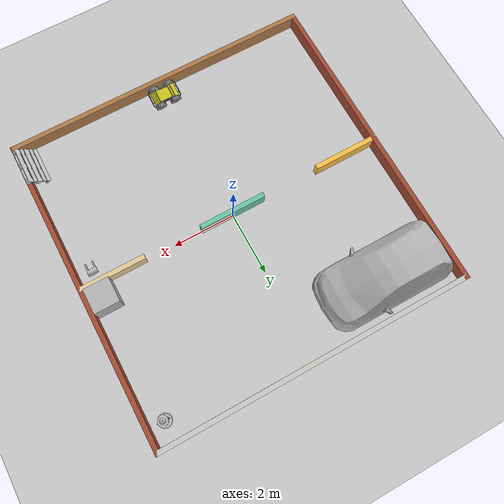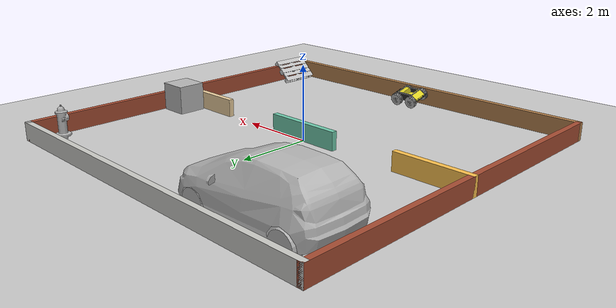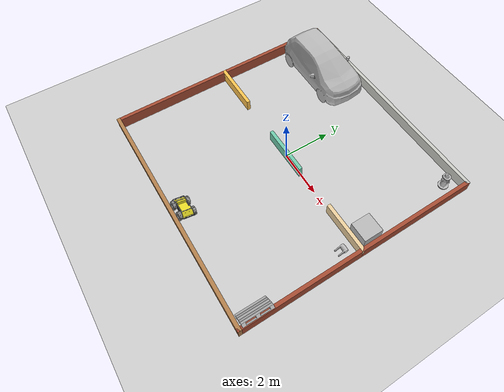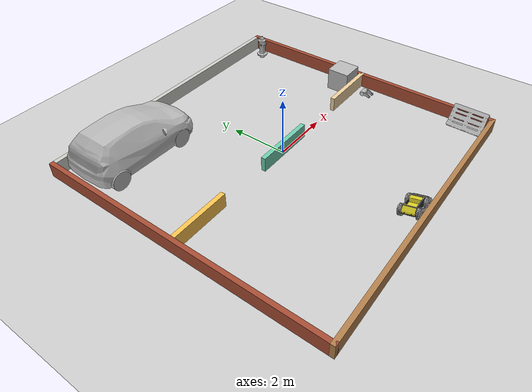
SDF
<sdf version="1.7">
 <world name="default">
  <light name="sun" type="directional">
   <pose>0 0 10 0 -0 0</pose>
   <diffuse>0.8 0.8 0.8 1</diffuse>
   <specular>0.2 0.2 0.2 1</specular>
   <attenuation>
    <range>1000</range>
    <constant>0.9</constant>
    <linear>0.01</linear>
    <quadratic>0.001</quadratic>
   </attenuation>
   <direction>-0.5 0.1 -0.9</direction>
   <spot><inner_angle>0</inner_angle><outer_angle>0</outer_angle><falloff>0</falloff></spot>
  </light>
  <model name="ground_plane">
   <static>1</static>
   <link name="link">
    <collision name="collision">
     <geometry><plane><normal>0 0 1</normal><size>100 100</size></plane></geometry>
     <surface>
      <contact><collide_bitmask>65535</collide_bitmask></contact>
      <friction><ode><mu>100</mu><mu2>50</mu2></ode></friction>
     </surface>
    </collision>
    <visual name="visual">
     <cast_shadows>0</cast_shadows>
     <geometry><plane><normal>0 0 1</normal><size>100 100</size></plane></geometry>
     <material>
      <script><uri>file://media/materials/scripts/gazebo.material</uri><name>Gazebo/Grey</name></script>
     </material>
    </visual>
   </link>
  </model>
  <gravity>0 0 -9.8</gravity>
  <magnetic_field>6e-06 2.3e-05 -4.2e-05</magnetic_field>
  <atmosphere type="adiabatic"/>
  <physics type="ode">
   <max_step_size>0.001</max_step_size>
   <real_time_factor>1</real_time_factor>
   <real_time_update_rate>1000</real_time_update_rate>
  </physics>
  <scene><ambient>0.4 0.4 0.4 1</ambient><background>0.7 0.7 0.7 1</background><shadows>1</shadows></scene>
  <spherical_coordinates>
   <surface_model>EARTH_WGS84</surface_model>
   <latitude_deg>0</latitude_deg>
   <longitude_deg>0</longitude_deg>
   <elevation>0</elevation>
   <heading_deg>0</heading_deg>
  </spherical_coordinates>
  <model name="mini">
   <pose>0.007549 -0.02535 0 0 -0 0</pose>
   <link name="Wall_0">
    <collision name="Wall_0_Collision">
     <geometry><box><size>10.15 0.15 0.5</size></box></geometry>
     <pose>0 0 0.25 0 -0 0</pose>
    </collision>
    <visual name="Wall_0_Visual">
     <pose>0 0 0.25 0 -0 0</pose>
     <geometry><box><size>10.15 0.15 0.5</size></box></geometry>
     <material>
      <script><uri>file://media/materials/scripts/gazebo.material</uri><name>Gazebo/Wood</name></script>
      <ambient>1 1 1 1</ambient>
     </material>
     <meta><layer>0</layer></meta>
    </visual>
    <pose>0 -5 0 0 -0 0</pose>
   </link>
   <link name="Wall_11">
    <collision name="Wall_11_Collision">
     <geometry><box><size>2.15 0.15 0.5</size></box></geometry>
     <pose>0 0 0.25 0 -0 0</pose>
    </collision>
    <visual name="Wall_11_Visual">
     <pose>0 0 0.25 0 -0 0</pose>
     <geometry><box><size>2.15 0.15 0.5</size></box></geometry>
     <material>
      <script><uri>file://media/materials/scripts/gazebo.material</uri><name>Gazebo/Grey</name></script>
      <ambient>1 0.764706 0.305882 1</ambient>
     </material>
     <meta><layer>0</layer></meta>
    </visual>
    <pose>-4 0 0 0 -0 0</pose>
   </link>
   <link name="Wall_13">
    <collision name="Wall_13_Collision">
     <geometry><box><size>2.15 0.15 0.5</size></box></geometry>
     <pose>0 0 0.25 0 -0 0</pose>
    </collision>
    <visual name="Wall_13_Visual">
     <pose>0 0 0.25 0 -0 0</pose>
     <geometry><box><size>2.15 0.15 0.5</size></box></geometry>
     <material>
      <script><uri>file://media/materials/scripts/gazebo.material</uri><name>Gazebo/Grey</name></script>
      <ambient>0.921569 0.807843 0.615686 1</ambient>
     </material>
     <meta><layer>0</layer></meta>
    </visual>
    <pose>4 0 0 0 -0 0</pose>
   </link>
   <link name="Wall_15">
    <collision name="Wall_15_Collision">
     <geometry><box><size>2.15 0.15 0.5</size></box></geometry>
     <pose>0 0 0.25 0 -0 0</pose>
    </collision>
    <visual name="Wall_15_Visual">
     <pose>0 0 0.25 0 -0 0</pose>
     <geometry><box><size>2.15 0.15 0.5</size></box></geometry>
     <material>
      <script><uri>file://media/materials/scripts/gazebo.material</uri><name>Gazebo/Grey</name></script>
      <ambient>0.435294 0.796078 0.67451 1</ambient>
     </material>
     <meta><layer>0</layer></meta>
    </visual>
   </link>
   <link name="Wall_2">
    <collision name="Wall_2_Collision">
     <geometry><box><size>10.15 0.15 0.5</size></box></geometry>
     <pose>0 0 0.25 0 -0 0</pose>
    </collision>
    <visual name="Wall_2_Visual">
     <pose>0 0 0.25 0 -0 0</pose>
     <geometry><box><size>10.15 0.15 0.5</size></box></geometry>
     <material>
      <script><uri>file://media/materials/scripts/gazebo.material</uri><name>Gazebo/Bricks</name></script>
      <ambient>1 1 1 1</ambient>
     </material>
     <meta><layer>0</layer></meta>
    </visual>
    <pose>-5 0 0 0 -0 1.5708</pose>
   </link>
   <link name="Wall_4">
    <collision name="Wall_4_Collision">
     <geometry><box><size>10.15 0.15 0.5</size></box></geometry>
     <pose>0 0 0.25 0 -0 0</pose>
    </collision>
    <visual name="Wall_4_Visual">
     <pose>0 0 0.25 0 -0 0</pose>
     <geometry><box><size>10.15 0.15 0.5</size></box></geometry>
     <material>
      <script><uri>file://media/materials/scripts/gazebo.material</uri><name>Gazebo/CeilingTiled</name></script>
      <ambient>1 1 1 1</ambient>
     </material>
     <meta><layer>0</layer></meta>
    </visual>
    <pose>0 5 0 0 -0 0</pose>
   </link>
   <link name="Wall_6">
    <collision name="Wall_6_Collision">
     <geometry><box><size>0.15 0.15 0.5</size></box></geometry>
     <pose>0 0 0.25 0 -0 0</pose>
    </collision>
    <visual name="Wall_6_Visual">
     <pose>0 0 0.25 0 -0 0</pose>
     <geometry><box><size>0.15 0.15 0.5</size></box></geometry>
     <material>
      <script><uri>file://media/materials/scripts/gazebo.material</uri><name>Gazebo/Grey</name></script>
      <ambient>1 1 1 1</ambient>
     </material>
     <meta><layer>0</layer></meta>
    </visual>
    <pose>5 5 0 0 -0 0</pose>
   </link>
   <link name="Wall_9">
    <collision name="Wall_9_Collision">
     <geometry><box><size>10.15 0.15 0.5</size></box></geometry>
     <pose>0 0 0.25 0 -0 0</pose>
    </collision>
    <visual name="Wall_9_Visual">
     <pose>0 0 0.25 0 -0 0</pose>
     <geometry><box><size>10.15 0.15 0.5</size></box></geometry>
     <material>
      <script><uri>file://media/materials/scripts/gazebo.material</uri><name>Gazebo/Bricks</name></script>
      <ambient>1 1 1 1</ambient>
     </material>
     <meta><layer>0</layer></meta>
    </visual>
    <pose>5 0 0 0 -0 -1.5708</pose>
   </link>
   <static>1</static>
  </model>
  <model name="hatchback">
   <static>1</static>
   <link name="link">
    <collision name="collision">
     <pose>0 0 0 0 -0 1.5708</pose>
     <geometry>
      <mesh><scale>0.0254 0.0254 0.0254</scale><uri>model://hatchback/meshes/hatchback.obj</uri></mesh>
     </geometry>
    </collision>
    <visual name="visual">
     <pose>0 0 0 0 -0 1.5708</pose>
     <geometry>
      <mesh><scale>0.0254 0.0254 0.0254</scale><uri>model://hatchback/meshes/hatchback.obj</uri></mesh>
     </geometry>
    </visual>
   </link>
   <pose>-3.18288 3.77771 0 0 -0 0</pose>
  </model>
  <model name="number9">
   <pose>4.5016 0.491166 0.4 0 -0 0</pose>
   <static>1</static>
   <link name="link">
    <visual name="visual">
     <geometry><mesh><uri>model://number1/meshes/number.dae</uri></mesh></geometry>
     <material>
      <script>
       <uri>model://number9/materials/scripts</uri>
       <uri>model://number9/materials/textures</uri>
       <name>Number/Nine</name>
      </script>
     </material>
    </visual>
   </link>
  </model>
  <model name="euro_pallet">
   <link name="link">
    <inertial>
     <mass>20</mass>
     <inertia><ixx>2.43</ixx><ixy>0</ixy><ixz>0</ixz><iyy>1.1</iyy><iyz>0</iyz><izz>3.47</izz></inertia>
    </inertial>
    <collision name="collision">
     <pose>0 0 0.05 0 -0 0</pose>
     <geometry><mesh><uri>model://euro_pallet/meshes/pallet.dae</uri><scale>0.1 0.1 0.1</scale></mesh></geometry>
    </collision>
    <visual name="visual">
     <pose>0 0 0.05 0 -0 0</pose>
     <geometry><mesh><uri>model://euro_pallet/meshes/pallet.dae</uri><scale>0.1 0.1 0.1</scale></mesh></geometry>
    </visual>
   </link>
   <pose>4.74621 -4.29279 0.335977 0 -0.802987 -0.010324</pose>
  </model>
  <model name="husky">
   <pose>0.026975 -4.58253 0.226201 0.260571 -1.4e-05 -3.14159</pose>
   <link name="base_link">
    <collision name="collision">
     <pose>0 0 0.1 0 -0 0</pose>
     <geometry><box><size>1.0074 0.5709 0.2675</size></box></geometry>
    </collision>
    <inertial>
     <mass>33.855</mass>
     <pose>-0.085613 -0.00084 0.238145 0 -0 0</pose>
     <inertia>
      <ixx>2.2343</ixx>
      <ixy>-0.023642</ixy>
      <ixz>0.275174</ixz>
      <iyy>3.42518</iyy>
      <iyz>0.00239624</iyz>
      <izz>2.1241</izz>
     </inertia>
    </inertial>
    <visual name="base">
     <geometry><mesh><uri>model://husky/meshes/base_link.stl</uri></mesh></geometry>
     <material><script><name>Gazebo/FlatBlack</name><uri>__default__</uri></script></material>
    </visual>
    <visual name="top_plate">
     <geometry><mesh><uri>model://husky/meshes/top_plate.stl</uri></mesh></geometry>
     <material><script><name>Gazebo/Yellow</name><uri>__default__</uri></script></material>
    </visual>
    <visual name="front_bumper">
     <pose>0.47 0 0.091 0 -0 0</pose>
     <geometry><mesh><uri>model://husky/meshes/bumper.stl</uri></mesh></geometry>
     <material><script><name>Gazebo/FlatBlack</name><uri>__default__</uri></script></material>
    </visual>
    <visual name="rear_bumper">
     <pose>-0.47 0 0.091 0 -0 3.141</pose>
     <geometry><mesh><uri>model://husky/meshes/bumper.stl</uri></mesh></geometry>
     <material><script><name>Gazebo/FlatBlack</name><uri>__default__</uri></script></material>
    </visual>
    <visual name="user_rail">
     <pose>0.272 0 0.245 0 -0 0</pose>
     <geometry><mesh><uri>model://husky/meshes/user_rail.stl</uri></mesh></geometry>
     <material><script><name>Gazebo/Grey</name><uri>__default__</uri></script></material>
    </visual>
   </link>
   <link name="back_left_wheel">
    <pose>-0.256 0.285475 0.035 0 -0 0</pose>
    <inertial>
     <mass>2.6357</mass>
     <inertia>
      <ixx>0.0246688</ixx>
      <ixy>0</ixy>
      <ixz>0</ixz>
      <iyy>0.0246688</iyy>
      <iyz>0</iyz>
      <izz>0.0441058</izz>
     </inertia>
    </inertial>
    <collision name="back_left_wheel_collision">
     <pose>0 0 0 -1.5707 0 0</pose>
     <geometry><cylinder><radius>0.17775</radius><length>0.1143</length></cylinder></geometry>
     <surface>
      <friction><ode><mu>100000</mu><mu2>100000</mu2><slip1>0</slip1><slip2>0</slip2></ode></friction>
     </surface>
    </collision>
    <visual name="back_left_wheel">
     <pose>0 0 0 -3.14159 0 0</pose>
     <geometry><mesh><uri>model://husky/meshes/wheel.stl</uri></mesh></geometry>
     <material><script><name>Gazebo/Grey</name><uri>__default__</uri></script></material>
    </visual>
   </link>
   <joint name="back_left_joint" type="revolute">
    <parent>base_link</parent>
    <child>back_left_wheel</child>
    <axis>
     <xyz expressed_in="__model__">0 1 0</xyz>
     <limit><lower>-1e+16</lower><upper>1e+16</upper></limit>
     <dynamics><spring_reference>0</spring_reference><spring_stiffness>0</spring_stiffness></dynamics>
    </axis>
    <physics><ode><limit><cfm>0</cfm><erp>0.9</erp></limit></ode></physics>
   </joint>
   <link name="back_right_wheel">
    <pose>-0.256 -0.285475 0.035 0 -0 0</pose>
    <inertial>
     <mass>2.6357</mass>
     <inertia>
      <ixx>0.0246688</ixx>
      <ixy>0</ixy>
      <ixz>0</ixz>
      <iyy>0.0246688</iyy>
      <iyz>0</iyz>
      <izz>0.0441058</izz>
     </inertia>
    </inertial>
    <collision name="back_right_wheel_collision">
     <pose>0 0 0 -1.5707 0 0</pose>
     <geometry><cylinder><radius>0.17775</radius><length>0.1143</length></cylinder></geometry>
     <surface>
      <friction><ode><mu>100000</mu><mu2>100000</mu2><slip1>0</slip1><slip2>0</slip2></ode></friction>
     </surface>
    </collision>
    <visual name="back_right_wheel">
     <pose>0 0 0 -3.14159 0 0</pose>
     <geometry><mesh><uri>model://husky/meshes/wheel.stl</uri></mesh></geometry>
     <material><script><name>Gazebo/Grey</name><uri>__default__</uri></script></material>
    </visual>
   </link>
   <joint name="back_right_joint" type="revolute">
    <parent>base_link</parent>
    <child>back_right_wheel</child>
    <axis>
     <xyz expressed_in="__model__">0 1 0</xyz>
     <limit><lower>-1e+16</lower><upper>1e+16</upper></limit>
     <dynamics><spring_reference>0</spring_reference><spring_stiffness>0</spring_stiffness></dynamics>
    </axis>
    <physics><ode><limit><cfm>0</cfm><erp>0.9</erp></limit></ode></physics>
   </joint>
   <link name="front_left_wheel">
    <pose>0.256 0.285475 0.035 0 -0 0</pose>
    <inertial>
     <mass>2.6357</mass>
     <inertia>
      <ixx>0.0246688</ixx>
      <ixy>0</ixy>
      <ixz>0</ixz>
      <iyy>0.0246688</iyy>
      <iyz>0</iyz>
      <izz>0.0441058</izz>
     </inertia>
    </inertial>
    <collision name="front_left_wheel_collision">
     <pose>0 0 0 -1.5707 0 0</pose>
     <geometry><cylinder><radius>0.17775</radius><length>0.1143</length></cylinder></geometry>
     <surface>
      <friction><ode><mu>100000</mu><mu2>100000</mu2><slip1>0</slip1><slip2>0</slip2></ode></friction>
     </surface>
    </collision>
    <visual name="front_left_wheel">
     <pose>0 0 0 -3.14159 0 0</pose>
     <geometry><mesh><uri>model://husky/meshes/wheel.stl</uri></mesh></geometry>
     <material><script><name>Gazebo/Grey</name><uri>__default__</uri></script></material>
    </visual>
   </link>
   <joint name="front_left_joint" type="revolute">
    <parent>base_link</parent>
    <child>front_left_wheel</child>
    <axis>
     <xyz expressed_in="__model__">0 1 0</xyz>
     <limit><lower>-1e+16</lower><upper>1e+16</upper></limit>
     <dynamics><spring_reference>0</spring_reference><spring_stiffness>0</spring_stiffness></dynamics>
    </axis>
    <physics><ode><limit><cfm>0</cfm><erp>0.9</erp></limit></ode></physics>
   </joint>
   <link name="front_right_wheel">
    <pose>0.256 -0.285475 0.035 0 -0 0</pose>
    <inertial>
     <mass>2.6357</mass>
     <inertia>
      <ixx>0.0246688</ixx>
      <ixy>0</ixy>
      <ixz>0</ixz>
      <iyy>0.0246688</iyy>
      <iyz>0</iyz>
      <izz>0.0441058</izz>
     </inertia>
    </inertial>
    <collision name="front_right_wheel_collision">
     <pose>0 0 0 -1.5707 0 0</pose>
     <geometry><cylinder><radius>0.17775</radius><length>0.1143</length></cylinder></geometry>
     <surface>
      <friction><ode><mu>100000</mu><mu2>100000</mu2><slip1>0</slip1><slip2>0</slip2></ode></friction>
     </surface>
    </collision>
    <visual name="front_right_wheel">
     <pose>0 0 0 -3.14159 0 0</pose>
     <geometry><mesh><uri>model://husky/meshes/wheel.stl</uri></mesh></geometry>
     <material><script><name>Gazebo/Grey</name><uri>__default__</uri></script></material>
    </visual>
   </link>
   <joint name="front_right_joint" type="revolute">
    <parent>base_link</parent>
    <child>front_right_wheel</child>
    <axis>
     <xyz expressed_in="__model__">0 1 0</xyz>
     <limit><lower>-1e+16</lower><upper>1e+16</upper></limit>
     <dynamics><spring_reference>0</spring_reference><spring_stiffness>0</spring_stiffness></dynamics>
    </axis>
    <physics><ode><limit><cfm>0</cfm><erp>0.9</erp></limit></ode></physics>
   </joint>
   <plugin name="husky_diff_controller" filename="libhusky_gazebo_plugins.so">
    <alwaysOn>1</alwaysOn>
    <updateRate>100.0</updateRate>
    <backLeftJoint>back_left_joint</backLeftJoint>
    <backRightJoint>back_right_joint</backRightJoint>
    <frontLeftJoint>front_left_joint</frontLeftJoint>
    <frontRightJoint>front_right_joint</frontRightJoint>
    <wheelSeparation>0.5709</wheelSeparation>
    <wheelDiameter>0.3555</wheelDiameter>
    <torque>35</torque>
   </plugin>
  </model>
  <model name="arm_part">
   <link name="link">
    <inertial>
     <pose>0 -0.12223 0.101835 0 -0 0</pose>
     <mass>0.5</mass>
     <inertia>
      <ixx>0.00950655</ixx>
      <ixy>0</ixy>
      <ixz>0</ixz>
      <iyy>0.00543452</iyy>
      <iyz>0</iyz>
      <izz>0.0114843</izz>
     </inertia>
    </inertial>
    <collision name="collision">
     <pose>0 -0.12223 0.101835 0 -0 0</pose>
     <geometry><box><size>0.29824 0.43206 0.20367</size></box></geometry>
    </collision>
    <visual name="visual">
     <geometry><mesh><uri>model://arm_part/meshes/arm.dae</uri></mesh></geometry>
     <material>
      <script>
       <uri>model://arm_part/materials/scripts</uri>
       <uri>model://arm_part/materials/textures</uri>
       <name>ArmPart/Diffuse</name>
      </script>
     </material>
    </visual>
   </link>
   <pose>4.50291 -0.434882 -0 0 -0 0</pose>
  </model>
  <model name="fire_hydrant">
   <static>1</static>
   <link name="link">
    <collision name="collision">
     <geometry><mesh><uri>model://fire_hydrant/meshes/fire_hydrant.dae</uri></mesh></geometry>
    </collision>
    <visual name="visual">
     <geometry><mesh><uri>model://fire_hydrant/meshes/fire_hydrant.dae</uri></mesh></geometry>
    </visual>
   </link>
   <pose>4.4841 4.32514 0 0 -0 0</pose>
  </model>
 </world>
</sdf>
